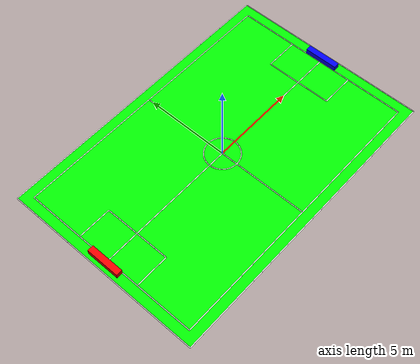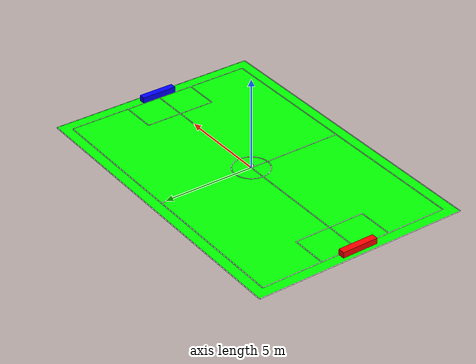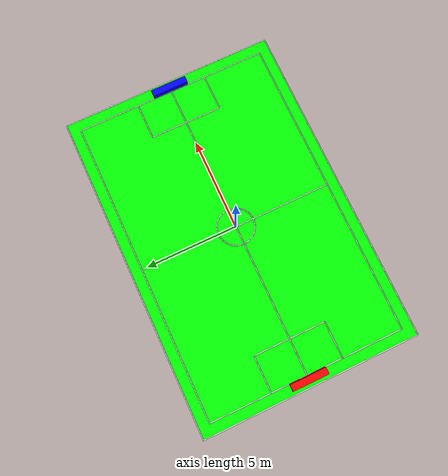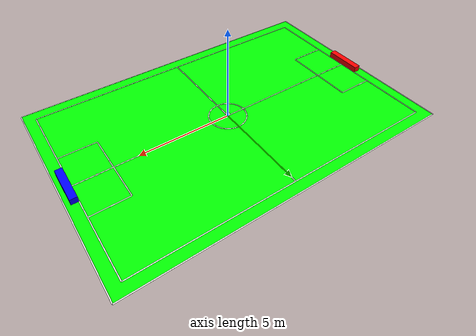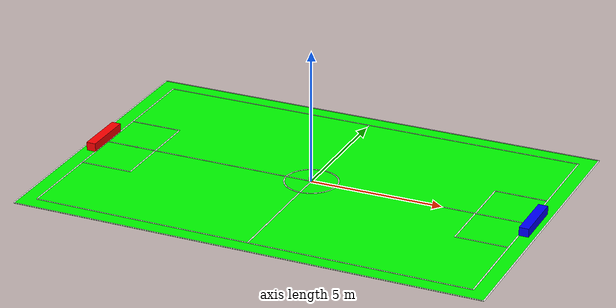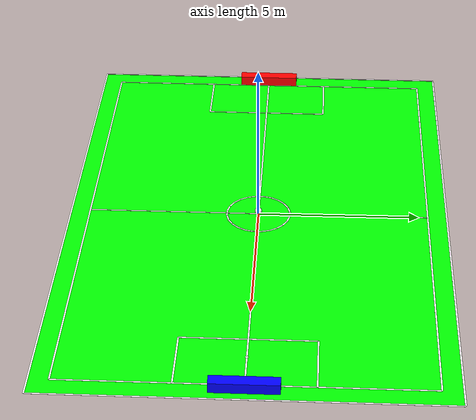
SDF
<?xml version="1.0" ?>
<sdf version="1.6">
  <world name="soccer_field">

    <!-- Global light -->
    <light name="sun" type="directional">
      <pose>0 0 10 0 0 0</pose>
      <direction>0 0 -1</direction>
      <diffuse>1 1 1 1</diffuse>
      <specular>0.5 0.5 0.5 1</specular>
      <cast_shadows>true</cast_shadows>
    </light>
    <!-- Soccer Field -->
    <model name="soccer_field">
      <static>true</static>
      <link name="field">
        <visual name="visual">
          <geometry>
            <plane>
              <normal>0 0 1</normal>
              <size>17.635 11.755</size>
            </plane>
          </geometry>
          <material>
            <ambient>0 1 0 1</ambient>
            <diffuse>0 1 0 1</diffuse>
          </material>
        </visual>
        <collision name="collision">
          <geometry>
            <plane>
              <normal>0 0 1</normal>
              <size>17.635 11.755</size>
            </plane>
          </geometry>
        </collision>
      </link>
    </model>

    <!-- Lines -->
    <model name="centerPassingLine1">
      <static>true</static>
      <pose>0 0 -0.0004 0 0 0</pose>
      <link name="link">
        <visual name="visual">
          <geometry>
            <box>
              <size>0.05 10.575 0.001</size>
            </box>
          </geometry>
          <material>
            <ambient>1 1 1 1</ambient>
            <diffuse>1 1 1 1</diffuse>
          </material>
        </visual>
      </link>
    </model>

    <model name="centerPassingLine2">
      <static>true</static>
      <pose>0 0 -0.0004 0 0 0</pose>
      <link name="link">
        <visual name="visual">
          <geometry>
            <box>
              <size>16.455 0.05 0.001</size>
            </box>
          </geometry>
          <material>
            <ambient>1 1 1 1</ambient>
            <diffuse>1 1 1 1</diffuse>
          </material>
        </visual>
      </link>
    </model>

    <model name="leftPenaltyHorizontalLine1">
      <static>true</static>
      <pose>-7.2475 1.96 -0.0004 0 0 0</pose>
      <link name="link">
        <visual name="visual">
          <geometry>
            <box>
              <size>1.96 0.05 0.001</size>
            </box>
          </geometry>
          <material>
            <ambient>1 1 1 1</ambient>
            <diffuse>1 1 1 1</diffuse>
          </material>
        </visual>
      </link>
    </model>

    <model name="leftPenaltyHorizontalLine2">
      <static>true</static>
      <pose>-7.2475 -1.96 -0.0004 0 0 0</pose>
      <link name="link">
        <visual name="visual">
          <geometry>
            <box>
              <size>1.96 0.05 0.001</size>
            </box>
          </geometry>
          <material>
            <ambient>1 1 1 1</ambient>
            <diffuse>1 1 1 1</diffuse>
          </material>
        </visual>
      </link>
    </model>

    <model name="leftPenaltyVerticalLine">
      <static>true</static>
      <pose>-6.2675 0 -0.0004 0 0 0</pose>
      <link name="link">
        <visual name="visual">
          <geometry>
            <box>
              <size>0.05 3.92 0.001</size>
            </box>
          </geometry>
          <material>
            <ambient>1 1 1 1</ambient>
            <diffuse>1 1 1 1</diffuse>
          </material>
        </visual>
      </link>
    </model>

    <model name="rightPenaltyHorizontalLine1">
      <static>true</static>
      <pose>7.2475 1.96 -0.0004 0 0 0</pose>
      <link name="link">
        <visual name="visual">
          <geometry>
            <box>
              <size>1.96 0.05 0.001</size>
            </box>
          </geometry>
          <material>
            <ambient>1 1 1 1</ambient>
            <diffuse>1 1 1 1</diffuse>
          </material>
        </visual>
      </link>
    </model>

    <model name="rightPenaltyHorizontalLine2">
      <static>true</static>
      <pose>7.2475 -1.96 -0.0004 0 0 0</pose>
      <link name="link">
        <visual name="visual">
          <geometry>
            <box>
              <size>1.96 0.05 0.001</size>
            </box>
          </geometry>
          <material>
            <ambient>1 1 1 1</ambient>
            <diffuse>1 1 1 1</diffuse>
          </material>
        </visual>
      </link>
    </model>

    <model name="rightPenaltyVerticalLine">
      <static>true</static>
      <pose>6.2675 0 -0.0004 0 0 0</pose>
      <link name="link">
        <visual name="visual">
          <geometry>
            <box>
              <size>0.05 3.92 0.001</size>
            </box>
          </geometry>
          <material>
            <ambient>1 1 1 1</ambient>
            <diffuse>1 1 1 1</diffuse>
          </material>
        </visual>
      </link>
    </model>

    <model name="BoundaryHorizontalLine1">
      <static>true</static>
      <pose>0 5.2875 -0.0004 0 0 0</pose>
      <link name="link">
        <visual name="visual">
          <geometry>
            <box>
              <size>16.455 0.05 0.001</size>
            </box>
          </geometry>
          <material>
            <ambient>1 1 1 1</ambient>
            <diffuse>1 1 1 1</diffuse>
          </material>
        </visual>
      </link>
    </model>

    <model name="BoundaryHorizontalLine2">
      <static>true</static>
      <pose>0 -5.2875 -0.0004 0 0 0</pose>
      <link name="link">
        <visual name="visual">
          <geometry>
            <box>
              <size>16.455 0.05 0.001</size>
            </box>
          </geometry>
          <material>
            <ambient>1 1 1 1</ambient>
            <diffuse>1 1 1 1</diffuse>
          </material>
        </visual>
      </link>
    </model>

    <model name="BoundaryVerticalLine1">
      <static>true</static>
      <pose>8.2275 0 -0.0004 0 0 0</pose>
      <link name="link">
        <visual name="visual">
          <geometry>
            <box>
              <size>0.05 10.575 0.001</size>
            </box>
          </geometry>
          <material>
            <ambient>1 1 1 1</ambient>
            <diffuse>1 1 1 1</diffuse>
          </material>
        </visual>
      </link>
    </model>

    <model name="BoundaryVerticalLine2">
      <static>true</static>
      <pose>-8.2275 0 -0.0004 0 0 0</pose>
      <link name="link">
        <visual name="visual">
          <geometry>
            <box>
              <size>0.05 10.575 0.001</size>
            </box>
          </geometry>
          <material>
            <ambient>1 1 1 1</ambient>
            <diffuse>1 1 1 1</diffuse>
          </material>
        </visual>
      </link>
    </model>

<model name="FrameHorizontalLine1">
      <static>true</static>
      <pose>0 5.8775 -0.0004 0 0 0</pose>
      <link name="link">
        <visual name="visual">
          <geometry>
            <box>
              <size>17.635 0.05 0.001</size>
            </box>
          </geometry>
          <material>
            <ambient>1 1 1 1</ambient>
            <diffuse>1 1 1 1</diffuse>
          </material>
        </visual>
      </link>
    </model>

    <model name="FrameHorizontalLine2">
      <static>true</static>
      <pose>0 -5.8775 -0.0004 0 0 0</pose>
      <link name="link">
        <visual name="visual">
          <geometry>
            <box>
              <size>17.635 0.05 0.001</size>
            </box>
          </geometry>
          <material>
            <ambient>1 1 1 1</ambient>
            <diffuse>1 1 1 1</diffuse>
          </material>
        </visual>
      </link>
    </model>

    <model name="FrameVerticalLine1">
      <static>true</static>
      <pose>8.8175 0 -0.0004 0 0 0</pose>
      <link name="link">
        <visual name="visual">
          <geometry>
            <box>
              <size>0.05 11.755 0.001</size>
            </box>
          </geometry>
          <material>
            <ambient>1 1 1 1</ambient>
            <diffuse>1 1 1 1</diffuse>
          </material>
        </visual>
      </link>
    </model>

    <model name="FrameVerticalLine2">
      <static>true</static>
      <pose>-8.8175 0 -0.0004 0 0 0</pose>
      <link name="link">
        <visual name="visual">
          <geometry>
            <box>
              <size>0.05 11.755 0.001</size>
            </box>
          </geometry>
          <material>
            <ambient>1 1 1 1</ambient>
            <diffuse>1 1 1 1</diffuse>
          </material>
        </visual>
      </link>
    </model>

    <model name="leftGoalPenaltyMark">
      <static>true</static>
      <pose>-7.0525 0 -0.0004 0 0 0</pose>
      <link name="link">
        <visual name="visual">
          <geometry>
          <cylinder>
            <radius>0.05</radius>
            <length>0.001</length>
          </cylinder>
          </geometry>
          <material>
            <ambient>1 1 1 1</ambient>
            <diffuse>1 1 1 1</diffuse>
          </material>
        </visual>
      </link>
    </model>

    <model name="rightGoalPenaltyMark">
      <static>true</static>
      <pose>7.0525 0 -0.0004 0 0 0</pose>
      <link name="link">
        <visual name="visual">
          <geometry>
          <cylinder>
            <radius>0.05</radius>
            <length>0.001</length>
          </cylinder>
          </geometry>
          <material>
            <ambient>1 1 1 1</ambient>
            <diffuse>1 1 1 1</diffuse>
          </material>
        </visual>
      </link>
    </model>

    <!-- Goals -->
    <model name="goal_blue">
    <static>true</static>
      <pose>8.405 0 0.1575 0 0 0</pose>
      <link name="link">
        <visual name="visual">
          <geometry>
            <box>
              <size>0.355 1.96 0.315</size>
            </box>
          </geometry>
          <material>
            <ambient>0 0 1 1</ambient>
            <diffuse>0 0 1 1</diffuse>
          </material>
        </visual>
      </link>
    </model>

    <model name="goal_red">
    <static>true</static>
      <pose>-8.405 0 0.1575 0 0 0</pose>
      <link name="link">
        <visual name="visual">
          <geometry>
            <box>
              <size>0.355 1.96 0.315</size>
            </box>
          </geometry>
          <material>
            <ambient>1 0 0 1</ambient>
            <diffuse>1 0 0 1</diffuse>
          </material>
        </visual>
      </link>
    </model>

    <!-- Soccer Ball -->
    <model name="soccer_ball">
      <pose>0 0 0.11 0 0 0</pose>
      <link name="link">
        <visual name="visual">
          <geometry>
            <sphere>
              <radius>0.11</radius>
            </sphere>
          </geometry>
          <material>
            <ambient>1 1 1 1</ambient>
            <diffuse>1 1 1 1</diffuse>
          </material>
        </visual>
        <collision name="collision">
          <geometry>
            <sphere>
              <radius>0.11</radius>
            </sphere>
          </geometry>
        </collision>
      </link>
    </model>

    <model name="center_circumference">
      <static>true</static>
      <link name="link">
        <visual name="seg_0">
          <pose>0.980000 0.000000 -0.0004 0 0 1.570796</pose>
          <geometry><box><size>0.2695 0.05000 0.00100</size></box></geometry>
          <material><diffuse>1 1 1 1</diffuse></material>
        </visual>
        <visual name="seg_1">
          <pose>0.946515 0.253520 -0.0004 0 0 1.832596</pose>
          <geometry><box><size>0.2695 0.05000 0.00100</size></box></geometry>
          <material><diffuse>1 1 1 1</diffuse></material>
        </visual>
        <visual name="seg_2">
          <pose>0.848195 0.490000 -0.0004 0 0 2.094395</pose>
          <geometry><box><size>0.2695 0.05000 0.00100</size></box></geometry>
          <material><diffuse>1 1 1 1</diffuse></material>
        </visual>
        <visual name="seg_3">
          <pose>0.692800 0.692800 -0.0004 0 0 2.356194</pose>
          <geometry><box><size>0.2695 0.05000 0.00100</size></box></geometry>
          <material><diffuse>1 1 1 1</diffuse></material>
        </visual>
        <visual name="seg_4">
          <pose>0.490000 0.848195 -0.0004 0 0 2.617994</pose>
          <geometry><box><size>0.2695 0.05000 0.00100</size></box></geometry>
          <material><diffuse>1 1 1 1</diffuse></material>
        </visual>
        <visual name="seg_5">
          <pose>0.253520 0.946515 -0.0004 0 0 2.879793</pose>
          <geometry><box><size>0.2695 0.05000 0.00100</size></box></geometry>
          <material><diffuse>1 1 1 1</diffuse></material>
        </visual>
        <visual name="seg_6">
          <pose>0.000000 0.980000 -0.0004 0 0 3.141593</pose>
          <geometry><box><size>0.2695 0.05000 0.00100</size></box></geometry>
          <material><diffuse>1 1 1 1</diffuse></material>
        </visual>
        <visual name="seg_7">
          <pose>-0.253520 0.946515 -0.0004 0 0 3.403392</pose>
          <geometry><box><size>0.2695 0.05000 0.00100</size></box></geometry>
          <material><diffuse>1 1 1 1</diffuse></material>
        </visual>
        <visual name="seg_8">
          <pose>-0.490000 0.848195 -0.0004 0 0 3.665191</pose>
          <geometry><box><size>0.2695 0.05000 0.00100</size></box></geometry>
          <material><diffuse>1 1 1 1</diffuse></material>
        </visual>
        <visual name="seg_9">
          <pose>-0.692800 0.692800 -0.0004 0 0 3.926991</pose>
          <geometry><box><size>0.2695 0.05000 0.00100</size></box></geometry>
          <material><diffuse>1 1 1 1</diffuse></material>
        </visual>
        <visual name="seg_10">
          <pose>-0.848195 0.490000 -0.0004 0 0 4.188790</pose>
          <geometry><box><size>0.2695 0.05000 0.00100</size></box></geometry>
          <material><diffuse>1 1 1 1</diffuse></material>
        </visual>
        <visual name="seg_11">
          <pose>-0.946515 0.253520 -0.0004 0 0 4.450590</pose>
          <geometry><box><size>0.2695 0.05000 0.00100</size></box></geometry>
          <material><diffuse>1 1 1 1</diffuse></material>
        </visual>
        <visual name="seg_12">
          <pose>-0.980000 0.000000 -0.0004 0 0 4.712389</pose>
          <geometry><box><size>0.2695 0.05000 0.00100</size></box></geometry>
          <material><diffuse>1 1 1 1</diffuse></material>
        </visual>
        <visual name="seg_13">
          <pose>-0.946515 -0.253520 -0.0004 0 0 4.974188</pose>
          <geometry><box><size>0.2695 0.05000 0.00100</size></box></geometry>
          <material><diffuse>1 1 1 1</diffuse></material>
        </visual>
        <visual name="seg_14">
          <pose>-0.848195 -0.490000 -0.0004 0 0 5.235988</pose>
          <geometry><box><size>0.2695 0.05000 0.00100</size></box></geometry>
          <material><diffuse>1 1 1 1</diffuse></material>
        </visual>
        <visual name="seg_15">
          <pose>-0.692800 -0.692800 -0.0004 0 0 5.497787</pose>
          <geometry><box><size>0.2695 0.05000 0.00100</size></box></geometry>
          <material><diffuse>1 1 1 1</diffuse></material>
        </visual>
        <visual name="seg_16">
          <pose>-0.490000 -0.848195 -0.0004 0 0 5.759586</pose>
          <geometry><box><size>0.2695 0.05000 0.00100</size></box></geometry>
          <material><diffuse>1 1 1 1</diffuse></material>
        </visual>
        <visual name="seg_17">
          <pose>-0.253520 -0.946515 -0.0004 0 0 6.021385</pose>
          <geometry><box><size>0.2695 0.05000 0.00100</size></box></geometry>
          <material><diffuse>1 1 1 1</diffuse></material>
        </visual>
        <visual name="seg_18">
          <pose>0.000000 -0.980000 -0.0004 0 0 6.283185</pose>
          <geometry><box><size>0.2695 0.05000 0.00100</size></box></geometry>
          <material><diffuse>1 1 1 1</diffuse></material>
        </visual>
        <visual name="seg_19">
          <pose>0.253520 -0.946515 -0.0004 0 0 0.261799</pose>
          <geometry><box><size>0.2695 0.05000 0.00100</size></box></geometry>
          <material><diffuse>1 1 1 1</diffuse></material>
        </visual>
        <visual name="seg_20">
          <pose>0.490000 -0.848195 -0.0004 0 0 0.523599</pose>
          <geometry><box><size>0.2695 0.05000 0.00100</size></box></geometry>
          <material><diffuse>1 1 1 1</diffuse></material>
        </visual>
        <visual name="seg_21">
          <pose>0.692800 -0.692800 -0.0004 0 0 0.785398</pose>
          <geometry><box><size>0.2695 0.05000 0.00100</size></box></geometry>
          <material><diffuse>1 1 1 1</diffuse></material>
        </visual>
        <visual name="seg_22">
          <pose>0.848195 -0.490000 -0.0004 0 0 1.047198</pose>
          <geometry><box><size>0.2695 0.05000 0.00100</size></box></geometry>
          <material><diffuse>1 1 1 1</diffuse></material>
        </visual>
        <visual name="seg_23">
          <pose>0.946515 -0.253520 -0.0004 0 0 1.308997</pose>
          <geometry><box><size>0.2695 0.05000 0.00100</size></box></geometry>
          <material><diffuse>1 1 1 1</diffuse></material>
        </visual>
      </link>
    </model>

  </world>
</sdf>
